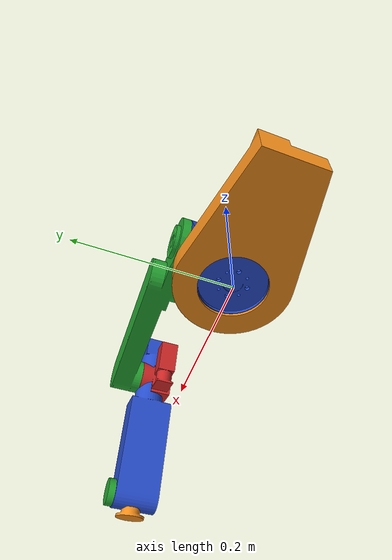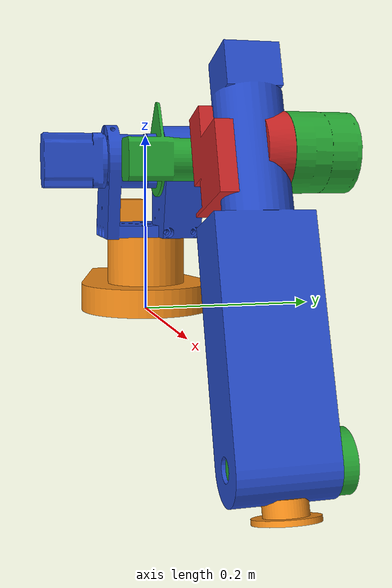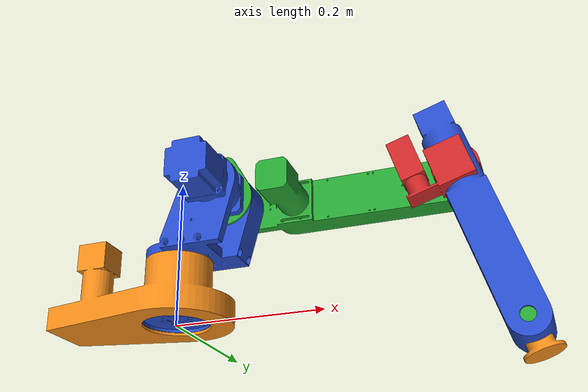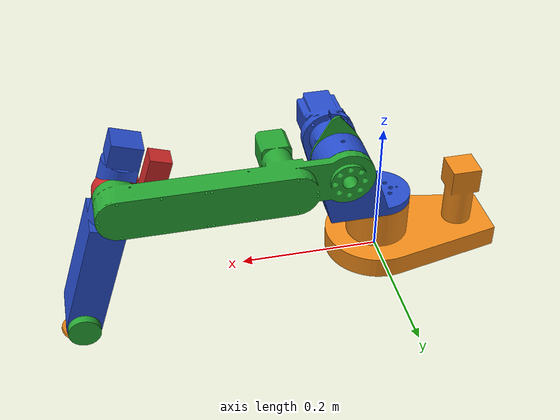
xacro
<?xml version="1.0"?>
<robot xmlns:xacro="http://www.ros.org/wiki/xacro" name="ar3_robot">
    <xacro:arg name="initial_positions_file" default="initial_positions.yaml" />

    <!-- Import ar3_robot urdf file -->
    <xacro:include filename="$(find ar3_description)/urdf/ar3.urdf.xacro" />

    <!-- Import control_xacro -->
    <xacro:include filename="ar3_robot.ros2_control.xacro" />

    <xacro:ar3_robot_ros2_control name="FakeSystem" initial_positions_file="$(arg initial_positions_file)"/>

</robot>

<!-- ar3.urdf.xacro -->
<robot xmlns:xacro="http://ros.org/wiki/xacro" name="ar3_robot">
  <xacro:arg name="prefix" default="" />

  <!-- Serial hardware arguments -->
  <xacro:arg name="serial_device" default="" />
  <xacro:arg name="serial_baudrate" default="" />
  <xacro:arg name="firmware_version" default="" />

  <!-- Simulation arguments -->
  <xacro:arg name="sim_gazebo" default="false" />
  <xacro:arg name="use_fake_hardware" default="false"/>
  <xacro:arg name="fake_sensor_commands" default="false"/>

  <!-- include AR3 macro -->
  <xacro:include filename="$(find ar3_description)/urdf/ar3_description.urdf.xacro" />

  <!-- include materials / colors -->
  <xacro:include filename="$(find ar3_description)/gazebo/ar3.materials.xacro" />

  <!-- include AR3 ros2_control description -->
  <xacro:include filename="$(find ar3_description)/ros2_control/ar3_system_position_only.ros2_control.xacro" />

  <!-- Used for fixing robot -->
  <link name="world"/>
  <gazebo reference="world">
    <static>true</static>
  </gazebo>

  <!-- Instantiate AR3 robot. Call this xacro macro in your own urdf.xacro to
       attach accessories to the AR3. -->
  <xacro:ar3 parent="world" prefix="$(arg prefix)">
    <origin xyz="0 0 0" rpy="0 0 0" />
  </xacro:ar3>

  <xacro:ar3_system_position_only
      name="ar3"
      prefix="$(arg prefix)"
      serial_device="$(arg serial_device)"
      serial_baudrate="$(arg serial_baudrate)"
      firmware_version="$(arg firmware_version)"
      sim_gazebo="$(arg sim_gazebo)"
      use_fake_hardware="$(arg use_fake_hardware)"
      fake_sensor_commands="$(arg fake_sensor_commands)"
      />

</robot>

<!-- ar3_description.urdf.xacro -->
<robot xmlns:xacro="http://ros.org/wiki/xacro">

  <xacro:macro name="ar3" params="parent prefix *origin">

    <joint name="${prefix}base_joint" type="fixed">
      <xacro:insert_block name="origin" />
      <parent link="${parent}"/>
      <child link="${prefix}base_link" />
    </joint>

    <link name="${prefix}base_link">
      <visual>
        <origin xyz="0 0 0" rpy="0 0 0" />
        <geometry>
          <mesh filename="package://ar3_description/meshes/base_link.stl" />
        </geometry>
        <material name="orange"/>
      </visual>

      <collision>
        <origin xyz="0 0 0" rpy="0 0 0" />
        <geometry>
          <mesh filename="package://ar3_description/meshes/base_link.stl" />
        </geometry>
      </collision>

      <inertial>
        <origin rpy="0 0 0" xyz="-4.6941E-06 0.054174 0.038824"/>
        <mass value="0.7102"/>
        <inertia ixx="0.0039943" ixy="3.697E-07" ixz="-5.7364E-08"
                 iyy="0.0014946" iyz="-0.00036051" izz="0.0042554"/>
      </inertial>
    </link>

    <joint name="${prefix}joint1" type="revolute">
      <origin xyz="0 0 0.003445" rpy="0 0 0" />
      <parent link="${prefix}base_link" />
      <child link="${prefix}link1" />
      <axis xyz="0 0 1" />
      <limit lower="${-170.0 * pi/180.0}" upper="${170.0 * pi/180.0}" effort="0" velocity="0"/>
    </joint>

    <link name="${prefix}link1">
      <visual>
        <origin xyz="0 0 0" rpy="0 0 0" />
        <geometry>
          <mesh filename="package://ar3_description/meshes/link_1.stl" />
        </geometry>
        <material name="blue"/>
      </visual>

      <collision>
        <origin xyz="0 0 0" rpy="0 0 0" />
        <geometry>
          <mesh filename="package://ar3_description/meshes/link_1.stl" />
        </geometry>
      </collision>

      <inertial>
        <origin xyz="-0.022706 0.04294 -0.12205" rpy="0 0 0" />
        <mass value="0.88065" />
        <inertia ixx="0.0034" ixy="0.00042296" ixz="-0.00089231"
                 iyy="0.0041778" iyz="0.0010848" izz="0.0027077" />
      </inertial>
    </link>

    <joint name="${prefix}joint2" type="revolute">
      <origin xyz="0.064146 0 0.16608" rpy="${-pi/2.0} 0 0" />
      <parent link="${prefix}link1" />
      <child link="${prefix}link2" />
      <axis xyz="0 0 1" />
      <limit lower="${-129.6 * pi/180.0}" upper="0" effort="0" velocity="0"/>
    </joint>

    <link name="${prefix}link2">
      <visual>
        <origin xyz="0 0 0" rpy="0 0 0" />
        <geometry>
          <mesh filename="package://ar3_description/meshes/link_2.stl" />
        </geometry>
        <material name="green"/>
      </visual>

      <collision>
        <origin xyz="0 0 0" rpy="0 0 0" />
        <geometry>
          <mesh filename="package://ar3_description/meshes/link_2.stl" />
        </geometry>
      </collision>

      <inertial>
        <origin xyz="0.064818 -0.11189 -0.038671" rpy="0 0 0" />
        <mass value="0.57738" />
        <inertia ixx="0.0047312" ixy="0.0022624" ixz="0.00032144"
                 iyy="0.0020836" iyz="-0.00056569" izz="0.0056129" />
      </inertial>
    </link>

    <joint name="${prefix}joint3" type="revolute">
      <origin xyz="0.3050019501576998 0 0" rpy="0 0 0" />
      <parent link="${prefix}link2" />
      <child link="${prefix}link3" />
      <axis xyz="0 0 1" />
      <limit lower="${1.0 * pi/180.0}" upper="${143.7 * pi/180.0}" effort="0" velocity="0"/>
    </joint>

    <link name="${prefix}link3">
      <visual>
        <origin xyz="0 0 0" rpy="0 0 0" />
        <geometry>
          <mesh filename="package://ar3_description/meshes/link_3.stl" />
        </geometry>
        <material name="red"/>
      </visual>

      <collision>
        <origin xyz="0 0 0" rpy="0 0 0" />
        <geometry>
          <mesh filename="package://ar3_description/meshes/link_3.stl" />
        </geometry>
      </collision>

      <inertial>
        <origin xyz="-0.00029765 -0.023661 -0.0019125" rpy="0 0 0" />
        <mass value="0.1787" />
        <inertia ixx="0.0001685" ixy="-2.7713E-05" ixz="5.6885E-06"
                 iyy="0.00012865" iyz="2.9256E-05" izz="0.00020744" />
      </inertial>
    </link>

    <joint name="${prefix}joint4" type="continuous">
      <origin xyz="0 0 0.00675" rpy="0 ${pi/2.0} 0"/>
      <parent link="${prefix}link3" />
      <child link="${prefix}link4" />
      <axis xyz="0 0 1" />
      <limit lower="${-164.5 * pi/180.0}" upper="${164.5 * pi/180.0}" effort="0" velocity="0"/>
    </joint>

    <link name="${prefix}link4">
      <visual>
        <origin xyz="0 0 0" rpy="0 0 0" />
        <geometry>
          <mesh filename="package://ar3_description/meshes/link_4.stl" />
        </geometry>
        <material name="blue"/>
      </visual>

      <collision>
        <origin xyz="0 0 0" rpy="0 0 0" />
        <geometry>
          <mesh filename="package://ar3_description/meshes/link_4.stl" />
        </geometry>
      </collision>

      <inertial>
        <origin xyz="-0.0016798 -0.00057319 -0.074404" rpy="0 0 0" />
        <mass value="0.34936" />
        <inertia ixx="0.0030532" ixy="-1.8615E-05" ixz="-7.0047E-05"
                 iyy="0.0031033" iyz="-2.3301E-05" izz="0.00022264" />
      </inertial>
    </link>

    <joint name="${prefix}joint5" type="revolute">
      <origin xyz="0 0 0.22225" rpy="0 ${-pi/2.0} 0" />
      <parent link="${prefix}link4" />
      <child link="${prefix}link5" />
      <axis xyz="0 0 1" />
      <limit lower="${-104.15 * pi/180.0}" upper="${104.15 * pi/180.0}" effort="0" velocity="0"/>
    </joint>

    <link name="${prefix}link5">
      <visual>
        <origin xyz="0 0 0" rpy="0 0 0" />
        <geometry>
          <mesh filename="package://ar3_description/meshes/link_5.stl" />
        </geometry>
        <material name="green"/>
      </visual>

      <collision>
        <origin xyz="0 0 0" rpy="0 0 0" />
        <geometry>
          <mesh filename="package://ar3_description/meshes/link_5.stl" />
        </geometry>
      </collision>

      <inertial>
        <origin xyz="0.0015066 -1.3102E-05 -0.012585" rpy="0 0 0" />
        <mass value="0.11562" />
        <inertia ixx="5.5035E-05" ixy="-1.019E-08" ixz="-2.6243E-06"
                 iyy="8.2921E-05" iyz="1.4437E-08" izz="5.2518E-05" />
      </inertial>
    </link>

    <joint name="${prefix}joint6" type="revolute">
      <origin xyz="0.02117 0 0 " rpy="0 ${pi/2.0} 0" />
      <parent link="${prefix}link5" />
      <child link="${prefix}link6" />
      <axis xyz="0 0 1" />
      <limit lower="${-148.1 * pi/180.0}" upper="${148.1 * pi/180.0}" effort="0" velocity="0"/>
    </joint>

    <link name="${prefix}link6">
      <visual>
        <origin xyz="0 0 0" rpy="0 0 0" />
        <geometry>
          <mesh filename="package://ar3_description/meshes/link_6.stl" />
        </geometry>
        <material name="orange"/>
      </visual>

      <collision>
        <origin xyz="0 0 0" rpy="0 0 0" />
        <geometry>
          <mesh filename="package://ar3_description/meshes/link_6.stl" />
        </geometry>
      </collision>

      <inertial>
        <origin xyz="2.9287E-10 -1.6472E-09 0.0091432" rpy="0 0 0" />
        <mass value="0.013863" />
        <inertia ixx="1.3596E-06" ixy="3.0585E-13" ixz="5.7102E-14"
                 iyy="1.7157E-06" iyz="6.3369E-09" izz="2.4332E-06" />
      </inertial>
    </link>

  </xacro:macro>

</robot>
